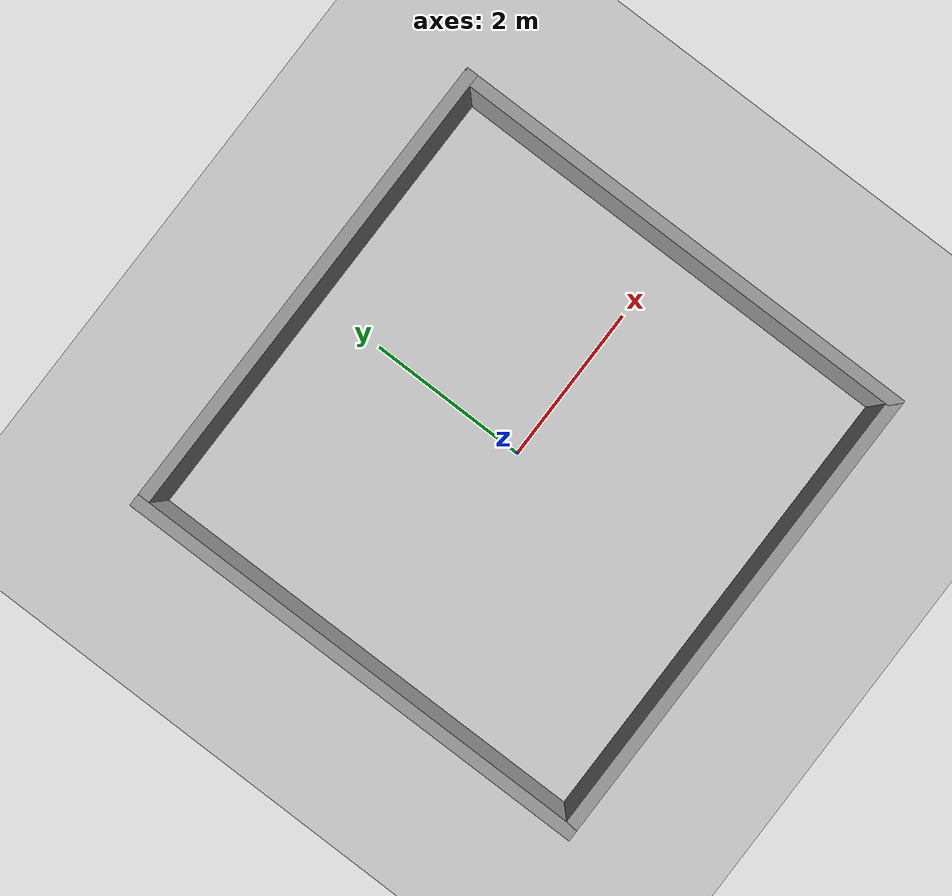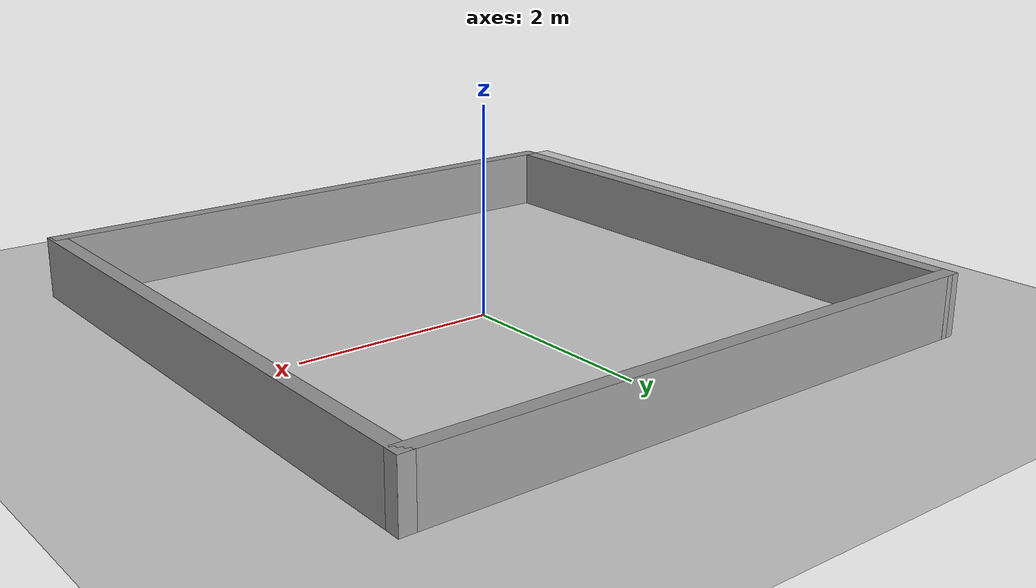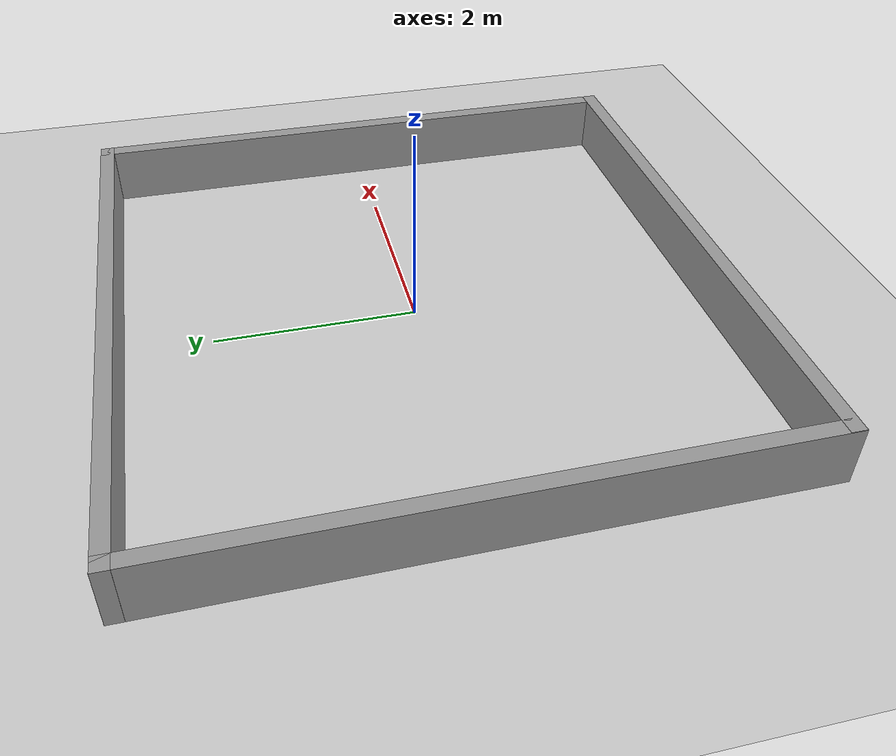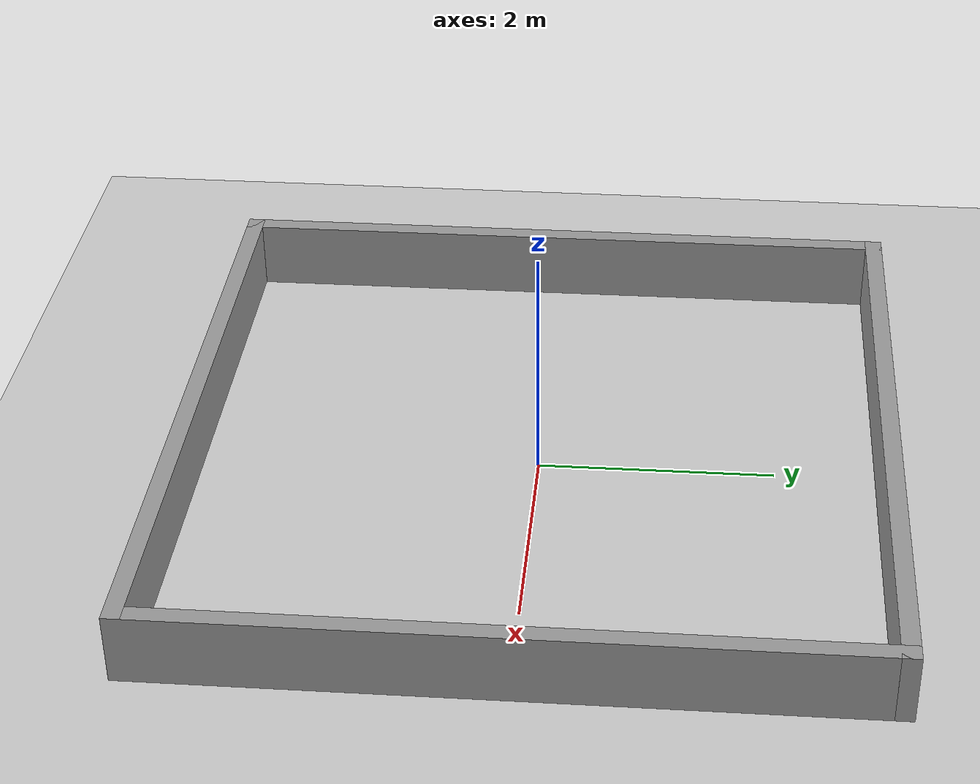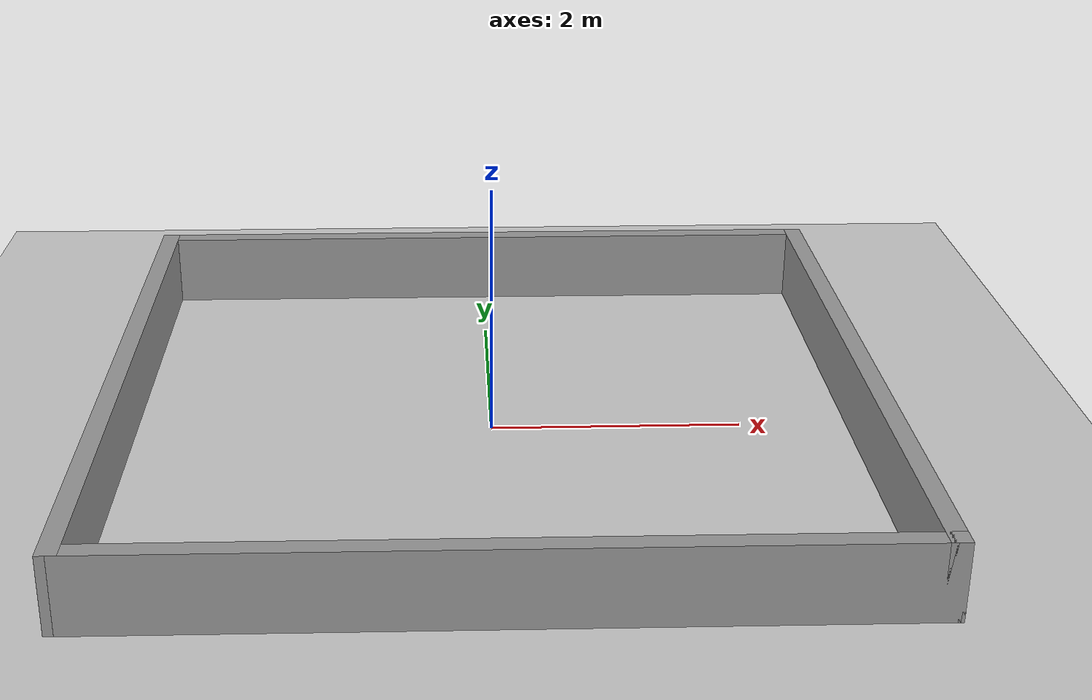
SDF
<?xml version="1.0" ?>

<sdf version="1.5">

  <world name="empty">

    <scene>
      <ambient>0.6 0.6 0.6 1</ambient>
      <sky>
        <sunrise />
        <clouds>
          <speed>0.6</speed>
        </clouds>
      </sky>
    </scene>

    <!-- Engines: ode, bullet, simbody, dart-->
    <physics type="ode">
      <max_step_size>0.001</max_step_size>
      <real_time_factor>1</real_time_factor>
      <real_time_update_rate>1000</real_time_update_rate>
      <gravity>0 0 -9.8</gravity>
    </physics>

    <include>
      <uri>model://sun</uri>
    </include>

    <include>
      <uri>model://ground_plane</uri>
    </include>

    <model name="empty">
      <include>
        <uri>model://empty</uri>
        <pose>0 0 0 0 0 0</pose>
      </include>
    </model>

  </world>

</sdf>

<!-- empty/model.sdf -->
<sdf version='1.7'>
  <model name='empty'>
    <pose>-0.0015 -0.045 0 0 -0 0</pose>
    <link name='Wall_3'>
      <collision name='Wall_3_Collision'>
        <geometry>
          <box>
            <size>6 0.15 0.6</size>
          </box>
        </geometry>
        <pose>0 0 0.3 0 -0 0</pose>
      </collision>
      <visual name='Wall_3_Visual'>
        <pose>0 0 0.3 0 -0 0</pose>
        <geometry>
          <box>
            <size>6 0.15 0.6</size>
          </box>
        </geometry>
        <material>
          <script>
            <uri>file://media/materials/scripts/gazebo.material</uri>
            <name>Gazebo/Grey</name>
          </script>
          <ambient>1 1 1 1</ambient>
        </material>
        <meta>
          <layer>0</layer>
        </meta>
      </visual>
      <pose>0.0105 -2.925 0 0 -0 0</pose>
    </link>
    <link name='Wall_4'>
      <collision name='Wall_4_Collision'>
        <geometry>
          <box>
            <size>6 0.15 0.6</size>
          </box>
        </geometry>
        <pose>0 0 0.3 0 -0 0</pose>
      </collision>
      <visual name='Wall_4_Visual'>
        <pose>0 0 0.3 0 -0 0</pose>
        <geometry>
          <box>
            <size>6 0.15 0.6</size>
          </box>
        </geometry>
        <material>
          <script>
            <uri>file://media/materials/scripts/gazebo.material</uri>
            <name>Gazebo/Grey</name>
          </script>
          <ambient>1 1 1 1</ambient>
        </material>
        <meta>
          <layer>0</layer>
        </meta>
      </visual>
      <pose>2.9355 0 0 0 -0 1.5708</pose>
    </link>
    <link name='Wall_5'>
      <collision name='Wall_5_Collision'>
        <geometry>
          <box>
            <size>6.02187 0.15 0.6</size>
          </box>
        </geometry>
        <pose>0 0 0.3 0 -0 0</pose>
      </collision>
      <visual name='Wall_5_Visual'>
        <pose>0 0 0.3 0 -0 0</pose>
        <geometry>
          <box>
            <size>6.02187 0.15 0.6</size>
          </box>
        </geometry>
        <material>
          <script>
            <uri>file://media/materials/scripts/gazebo.material</uri>
            <name>Gazebo/Grey</name>
          </script>
          <ambient>1 1 1 1</ambient>
        </material>
        <meta>
          <layer>0</layer>
        </meta>
      </visual>
      <pose>-0 2.925 0 0 -0 3.14159</pose>
    </link>
    <link name='Wall_6'>
      <collision name='Wall_6_Collision'>
        <geometry>
          <box>
            <size>6 0.15 0.6</size>
          </box>
        </geometry>
        <pose>0 0 0.3 0 -0 0</pose>
      </collision>
      <visual name='Wall_6_Visual'>
        <pose>0 0 0.3 0 -0 0</pose>
        <geometry>
          <box>
            <size>6 0.15 0.6</size>
          </box>
        </geometry>
        <material>
          <script>
            <uri>file://media/materials/scripts/gazebo.material</uri>
            <name>Gazebo/Grey</name>
          </script>
          <ambient>1 1 1 1</ambient>
        </material>
        <meta>
          <layer>0</layer>
        </meta>
      </visual>
      <pose>-2.928 0 0 0 -0 -1.56823</pose>
    </link>
    <static>1</static>
  </model>
</sdf>
